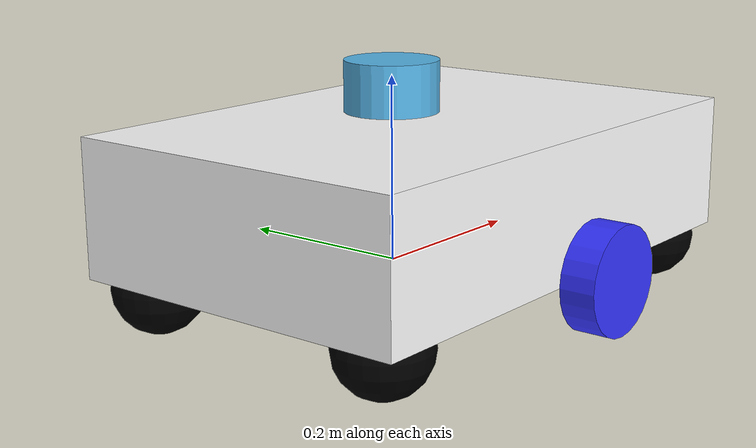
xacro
<?xml version="1.0"?>
<robot xmlns:xacro="http://www.ros.org/wiki/xacro"  name="robot">

    <xacro:include filename="robot_core.xacro" />

    <xacro:include filename="ros2_control.xacro" />

    <xacro:include filename="lidar.xacro" />
    <xacro:include filename="depth_camera.xacro" />
</robot>

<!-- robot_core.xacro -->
<robot xmlns:xacro="http://www.ros.org/wiki/xacro" >

    <xacro:include filename="inertial_macros.xacro"/>

    <material name="white">
        <color rgba="1 1 1 1" />
    </material>

    <material name="orange">
        <color rgba="1 0.3 0.1 1"/>
    </material>

    <material name="blue">
        <color rgba="0.2 0.2 1 1"/>
    </material>

    <material name="black">
        <color rgba="0 0 0 1"/>
    </material>

    <!-- BASE LINK -->
    <link name="base_link"/>

        <!-- BASE_FOOTPRINT LINK -->

    <joint name="base_footprint_joint" type="fixed">
        <parent link="base_link"/>
        <child link="base_footprint"/>
        <origin xyz="0 0 0" rpy="0 0 0"/>
    </joint>

    <link name="base_footprint">
    </link>

    <!-- CHASSIS LINK -->
    <joint name="chassis_joint" type="fixed">
        <parent link="base_link"/>
        <child link="chassis"/>
        <origin xyz="-0.1 0 0"/>
    </joint>

    <link name="chassis">
        <visual>
            <origin xyz="0.15 0 0.075"/>
            <geometry>
                <box size="0.6 0.4 0.15"/>
            </geometry>
            <material name="white"/>
        </visual>
        <collision>
            <origin xyz="0.15 0 0.075"/>
            <geometry>
                <box size="0.6 0.4 0.15"/>
            </geometry>
        </collision>
        <xacro:inertial_box mass="0.5" x="0.6" y="0.4" z="0.15">
            <origin xyz="0.15 0 0.075" rpy="0 0 0"/>
        </xacro:inertial_box>
    </link>

    <!-- WHEELS -->
    <joint name="left_wheel_joint" type="continuous">
        <parent link="base_link"/>
        <child link="left_wheel"/>
        <origin xyz="0.08 0.22 0" rpy="-${pi/2} 0 0" />
        <axis xyz="0 0 1"/>
    </joint>

    <link name="left_wheel">
        <visual>
            <geometry>
                <cylinder radius="0.06" length="0.04"/>
            </geometry>
            <material name="blue"/>
        </visual>
        <collision>
            <geometry>
                <cylinder radius="0.06" length="0.04"/>
            </geometry>
        </collision>
        <xacro:inertial_cylinder mass="0.1" length="0.04" radius="0.06">
            <origin xyz="0 0 0" rpy="0 0 0"/>
        </xacro:inertial_cylinder>
    </link>

    <joint name="right_wheel_joint" type="continuous">
        <parent link="base_link"/>
        <child link="right_wheel"/>
        <origin xyz="0.08 -0.22 0" rpy="${pi/2} 0 0" />
        <axis xyz="0 0 -1"/>
    </joint>

    <link name="right_wheel">
        <visual>
            <geometry>
                <cylinder radius="0.06" length="0.04"/>
            </geometry>
            <material name="blue"/>
        </visual>
        <collision>
            <geometry>
                <cylinder radius="0.06" length="0.04"/>
            </geometry>
        </collision>
        <xacro:inertial_cylinder mass="0.1" length="0.04" radius="0.06">
            <origin xyz="0 0 0" rpy="0 0 0"/>
        </xacro:inertial_cylinder>
    </link>

    <!-- FOUR CORNER CASTERS -->
    <!-- Front Left Caster -->
    <joint name="front_left_caster_joint" type="fixed">
        <parent link="chassis"/>
        <child link="front_left_caster"/>
        <origin xyz="0.40 0.15 -0.01"/>
    </joint>

    <link name="front_left_caster">
        <visual>
            <geometry>
                <sphere radius="0.05"/>
            </geometry>
            <material name="black"/>
        </visual>
        <collision>
            <geometry>
                <sphere radius="0.05"/>
            </geometry>
        </collision>
        <xacro:inertial_sphere mass="0.1" radius="0.05">
            <origin xyz="0 0 0" rpy="0 0 0"/>
        </xacro:inertial_sphere>
    </link>

    <!-- Front Right Caster -->
    <joint name="front_right_caster_joint" type="fixed">
        <parent link="chassis"/>
        <child link="front_right_caster"/>
        <origin xyz="0.40 -0.15 -0.01"/>
    </joint>

    <link name="front_right_caster">
        <visual>
            <geometry>
                <sphere radius="0.05"/>
            </geometry>
            <material name="black"/>
        </visual>
        <collision>
            <geometry>
                <sphere radius="0.05"/>
            </geometry>
        </collision>
        <xacro:inertial_sphere mass="0.1" radius="0.05">
            <origin xyz="0 0 0" rpy="0 0 0"/>
        </xacro:inertial_sphere>
    </link>

    <!-- Back Left Caster -->
    <joint name="back_left_caster_joint" type="fixed">
        <parent link="chassis"/>
        <child link="back_left_caster"/>
        <origin xyz="-0.10 0.15 -0.01"/>
    </joint>

    <link name="back_left_caster">
        <visual>
            <geometry>
                <sphere radius="0.05"/>
            </geometry>
            <material name="black"/>
        </visual>
        <collision>
            <geometry>
                <sphere radius="0.05"/>
            </geometry>
        </collision>
        <xacro:inertial_sphere mass="0.1" radius="0.05">
            <origin xyz="0 0 0" rpy="0 0 0"/>
        </xacro:inertial_sphere>
    </link>

    <!-- Back Right Caster -->
    <joint name="back_right_caster_joint" type="fixed">
        <parent link="chassis"/>
        <child link="back_right_caster"/>
        <origin xyz="-0.10 -0.15 -0.01"/>
    </joint>

    <link name="back_right_caster">
        <visual>
            <geometry>
                <sphere radius="0.05"/>
            </geometry>
            <material name="black"/>
        </visual>
        <collision>
            <geometry>
                <sphere radius="0.05"/>
            </geometry>
        </collision>
        <xacro:inertial_sphere mass="0.1" radius="0.05">
            <origin xyz="0 0 0" rpy="0 0 0"/>
        </xacro:inertial_sphere>
    </link>

    <!-- Gazebo Friction Parameters -->
    <gazebo reference="front_left_caster">
        <mu1 value="0.0001"/>
        <mu2 value="0.0001"/>
    </gazebo>
    <gazebo reference="front_right_caster">
        <mu1 value="0.0001"/>
        <mu2 value="0.0001"/>
    </gazebo>
    <gazebo reference="back_left_caster">
        <mu1 value="0.0001"/>
        <mu2 value="0.0001"/>
    </gazebo>
    <gazebo reference="back_right_caster">
        <mu1 value="0.0001"/>
        <mu2 value="0.0001"/>
    </gazebo>
</robot>

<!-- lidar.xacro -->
<robot xmlns:xacro="http://www.ros.org/wiki/xacro" >

<link name="lidar_link">
  <inertial>
    <origin xyz="0 0 0" rpy="0 0 0"/>
    <mass value="0.125"/>
    <inertia ixx="0.001"  ixy="0"  ixz="0" iyy="0.001" iyz="0" izz="0.001" />
  </inertial>

  <collision>
    <origin xyz="0 0 0" rpy="0 0 0"/>
    <geometry>
       <cylinder radius="0.0508" length="0.055"/>
    </geometry>
  </collision>

  <visual>
    <origin xyz="0 0 0" rpy="0 0 0"/>
    <geometry>
       <cylinder radius="0.0508" length="0.055"/>
    </geometry>
  </visual>
</link>

<joint name="lidar_joint" type="fixed">
  <parent link="chassis"/>
  <child link="lidar_link"/>
  <origin xyz="0.1 0 0.19" rpy="0 0 0"/>
</joint>

<gazebo reference="lidar_link">
  <sensor name="lidar" type="ray">
    <always_on>true</always_on>
    <visualize>true</visualize>
    <update_rate>5</update_rate>
    <ray>
      <scan>
        <horizontal>
          <samples>360</samples>
          <resolution>1.000000</resolution>
          <min_angle>0.000000</min_angle>
          <max_angle>6.280000</max_angle>
        </horizontal>
      </scan>
      <range>
        <min>0.120000</min>
        <max>3.5</max>
        <resolution>0.015000</resolution>
      </range>
      <noise>
        <type>gaussian</type>
        <mean>0.0</mean>
        <stddev>0.01</stddev>
      </noise>
    </ray>
    <plugin name="scan" filename="libgazebo_ros_ray_sensor.so">
      <ros>
        <remapping>~/out:=scan</remapping>
      </ros>
      <output_type>sensor_msgs/LaserScan</output_type>
      <frame_name>lidar_link</frame_name>
    </plugin>
  </sensor>
</gazebo>
</robot>

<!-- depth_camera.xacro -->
<robot xmlns:xacro="http://www.ros.org/wiki/xacro" >

 <link name="camera_link">
  <visual>
    <origin xyz="0 0 0" rpy="0 0 0"/>
    <geometry>
      <box size="0.015 0.130 0.022"/>
    </geometry>
  </visual>

  <collision>
    <origin xyz="0 0 0" rpy="0 0 0"/>
    <geometry>
      <box size="0.015 0.130 0.022"/>
    </geometry>
  </collision>

  <inertial>
    <origin xyz="0 0 0" rpy="0 0 0"/>
    <mass value="0.035"/>
    <inertia ixx="0.001"  ixy="0"  ixz="0" iyy="0.001" iyz="0" izz="0.001" />
  </inertial>
</link>

<joint name="camera_joint" type="fixed">
  <parent link="chassis"/>
  <child link="camera_link"/>
  <origin xyz="0.45 0 0.08" rpy="0 0 0"/>
</joint>

<link name="camera_depth_frame"/>

<joint name="camera_depth_joint" type="fixed">
  <origin xyz="0 0 0" rpy="${-pi/2} 0 ${-pi/2}"/>
  <parent link="camera_link"/>
  <child link="camera_depth_frame"/>
</joint>

<gazebo reference="camera_link">
  <sensor name="depth_camera" type="depth">
    <visualize>true</visualize>
    <update_rate>30.0</update_rate>
    <camera name="camera">
      <horizontal_fov>1.047198</horizontal_fov>
      <image>
        <width>640</width>
        <height>480</height>
        <format>R8G8B8</format>
      </image>
      <clip>
        <near>0.05</near>
        <far>3</far>
      </clip>
    </camera>
    <plugin name="depth_camera_controller" filename="libgazebo_ros_camera.so">
      <baseline>0.2</baseline>
      <alwaysOn>true</alwaysOn>
      <updateRate>0.0</updateRate>
      <frame_name>camera_depth_frame</frame_name>
      <pointCloudCutoff>0.5</pointCloudCutoff>
      <pointCloudCutoffMax>3.0</pointCloudCutoffMax>
      <distortionK1>0</distortionK1>
      <distortionK2>0</distortionK2>
      <distortionK3>0</distortionK3>
      <distortionT1>0</distortionT1>
      <distortionT2>0</distortionT2>
      <CxPrime>0</CxPrime>
      <Cx>0</Cx>
      <Cy>0</Cy>
      <focalLength>0</focalLength>
      <hackBaseline>0</hackBaseline>
    </plugin>
  </sensor>
</gazebo>

</robot>
